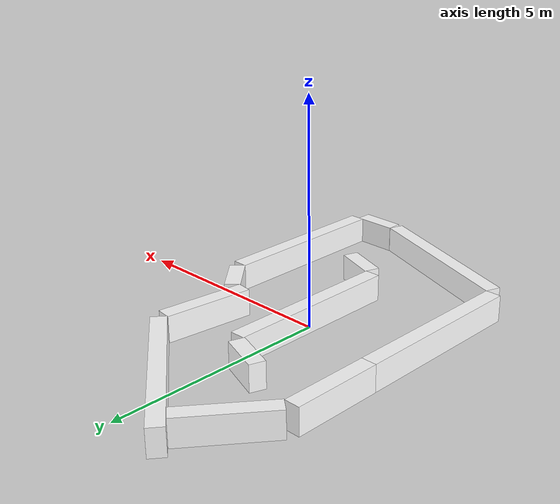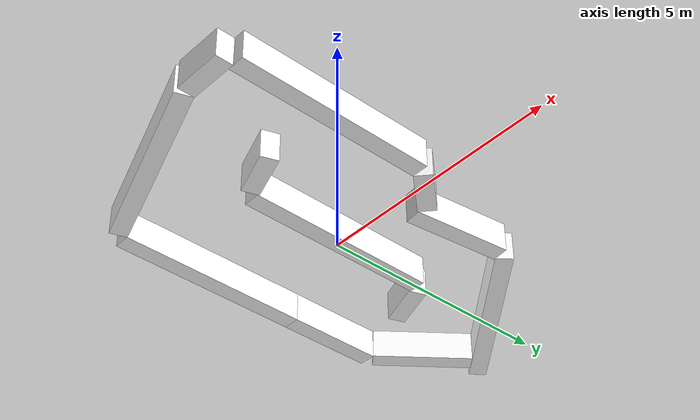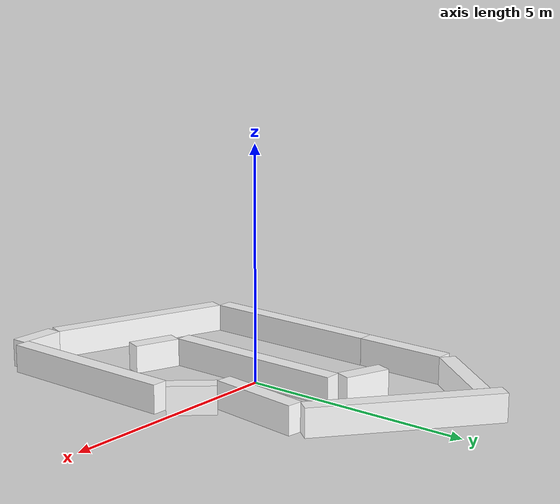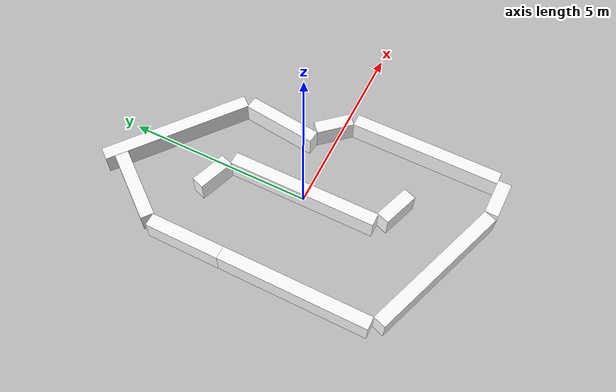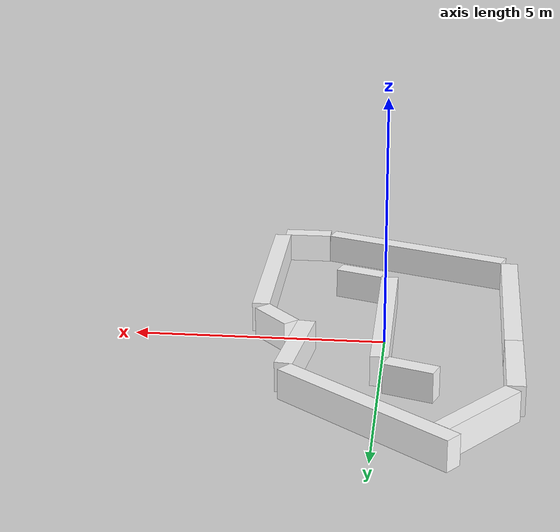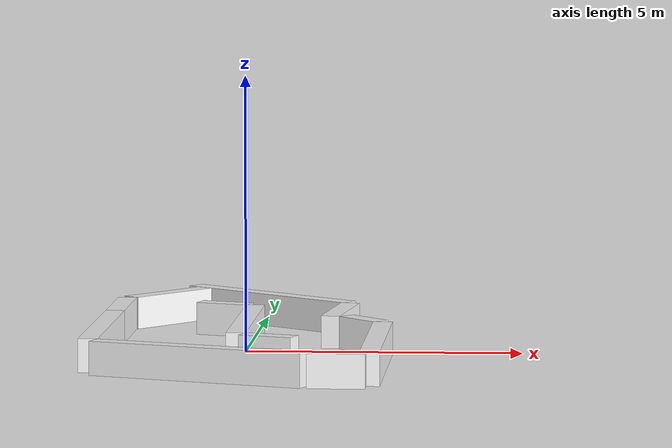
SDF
<?xml version='1.0'?>
<sdf version='1.0'>
  <model name='default_maze'>
        <include>
            <uri>model://large_wall</uri>
            <name>wall_01</name>
            <pose>-2.5 -1 0.3 0 0 1.57</pose>
        </include>

        <include>
            <uri>model://medium_wall</uri>
            <name>wall_02</name>
            <pose>-2.5 2 0.3 0 0 1.57</pose>
        </include>

        <include>
            <uri>model://medium_wall</uri>
            <name>wall_03</name>
            <pose>-1.82 3.88 0.3 0 0 0.9</pose>
        </include>

        <include>
            <uri>model://large_wall</uri>
            <name>wall_04</name>
            <pose>0 0 0.3 0 0 1.57</pose>
        </include>

        <include>
            <uri>model://small_wall</uri>
            <name>wall_05</name>
            <pose>-0.6 2.3 0.3 0 0 2.8</pose>
        </include>

        <include>
            <uri>model://small_wall</uri>
            <name>wall_06</name>
            <pose>0.6 -2.3 0.3 0 0 2.8</pose>
        </include>

        <include>
            <uri>model://large_wall</uri>
            <name>wall_07</name>
            <pose>-0.5 -3.83 0.3 0 0 2.8</pose>
        </include>

        <include>
            <uri>model://large_wall</uri>
            <name>wall_08</name>
            <pose>2.5 -2.325 0.3 0 0 1.57</pose>
        </include>

        <include>
            <uri>model://large_wall</uri>
            <name>wall_09</name>
            <pose>0.15 3.82 0.3 0 0 2.47</pose>
        </include>

        <include>
            <uri>model://small_wall</uri>
            <name>wall_10</name>
            <pose>2.125 0.16 0.3 0 0 2.3</pose>
        </include>

        <include>
            <uri>model://medium_wall</uri>
            <name>wall_11</name>
            <pose>1.625 1.44 0.3 0 0 1.45</pose>
        </include>

        <include>
            <uri>model://small_wall</uri>
            <name>wall_12</name>
            <pose>1.94 -4.5 0.3 0 0 0</pose>
        </include>
    <static>1</static>
    <allow_auto_disable>1</allow_auto_disable>
  </model>
</sdf>

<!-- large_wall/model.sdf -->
<sdf version='1.0'>
  <model name='large_wall'>
    <link name='large_wall_10'>
      <pose frame=''>0 0 0 0 -0 0</pose>
      <self_collide>0</self_collide>
      <enable_wind>0</enable_wind>
      <kinematic>0</kinematic>
      <gravity>1</gravity>
      <inertial>
        <mass>1</mass>
        <pose frame=''>0 0 0 0 -0 0</pose>
        <inertia>
          <ixx>1</ixx>
          <ixy>0</ixy>
          <ixz>0</ixz>
          <iyy>1</iyy>
          <iyz>0</iyz>
          <izz>1</izz>
        </inertia>
      </inertial>
      <visual name='large_wall_10_Visual_0'>
        <pose frame=''>0 0 0 0 -0 0</pose>
        <geometry>
          <box>
            <size>4 0.35 0.6</size>
          </box>
        </geometry>
        <material>
          <script>
            <uri>model://large_wall/materials/scripts</uri>
            <uri>model://large_wall/materials/textures</uri>
            <name>large_wall</name>
          </script>
          <shader type='pixel'>
            <normal_map>__default__</normal_map>
          </shader>
          <ambient>1 1 1 1</ambient>
          <diffuse>1 1 1 1</diffuse>
          <specular>0 0 0 1</specular>
          <emissive>0 0 0 1</emissive>
        </material>
        <meta>
          <layer>0</layer>
        </meta>
        <transparency>0</transparency>
        <cast_shadows>1</cast_shadows>
      </visual>
      <collision name='large_wall_10_Collision_0'>
        <laser_retro>0</laser_retro>
        <max_contacts>10</max_contacts>
        <pose frame=''>0 0 0 0 -0 0</pose>
        <geometry>
          <box>
            <size>4 0.35 0.6</size>
          </box>
        </geometry>
        <surface>
          <friction>
            <ode>
              <mu>1</mu>
              <mu2>1</mu2>
              <fdir1>0 0 0</fdir1>
              <slip1>0</slip1>
              <slip2>0</slip2>
            </ode>
            <torsional>
              <coefficient>1</coefficient>
              <patch_radius>0</patch_radius>
              <surface_radius>0</surface_radius>
              <use_patch_radius>1</use_patch_radius>
              <ode>
                <slip>0</slip>
              </ode>
            </torsional>
          </friction>
          <bounce>
            <restitution_coefficient>0</restitution_coefficient>
            <threshold>1e+06</threshold>
          </bounce>
          <contact>
            <collide_without_contact>0</collide_without_contact>
            <collide_without_contact_bitmask>1</collide_without_contact_bitmask>
            <collide_bitmask>1</collide_bitmask>
            <ode>
              <soft_cfm>0</soft_cfm>
              <soft_erp>0.2</soft_erp>
              <kp>1e+13</kp>
              <kd>1</kd>
              <max_vel>0.01</max_vel>
              <min_depth>0</min_depth>
            </ode>
            <bullet>
              <split_impulse>1</split_impulse>
              <split_impulse_penetration_threshold>-0.01</split_impulse_penetration_threshold>
              <soft_cfm>0</soft_cfm>
              <soft_erp>0.2</soft_erp>
              <kp>1e+13</kp>
              <kd>1</kd>
            </bullet>
          </contact>
        </surface>
      </collision>
    </link>
    <static>1</static>
    <allow_auto_disable>1</allow_auto_disable>
  </model>
</sdf>

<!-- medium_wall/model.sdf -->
<sdf version='1.0'>
  <model name='medium_wall'>
    <link name='medium_wall_10'>
      <pose frame=''>0 0 0 0 -0 0</pose>
      <self_collide>0</self_collide>
      <enable_wind>0</enable_wind>
      <kinematic>0</kinematic>
      <gravity>1</gravity>
      <inertial>
        <mass>1</mass>
        <pose frame=''>0 0 0 0 -0 0</pose>
        <inertia>
          <ixx>1</ixx>
          <ixy>0</ixy>
          <ixz>0</ixz>
          <iyy>1</iyy>
          <iyz>0</iyz>
          <izz>1</izz>
        </inertia>
      </inertial>
      <visual name='medium_wall_10_Visual_0'>
        <pose frame=''>0 0 0 0 -0 0</pose>
        <geometry>
          <box>
            <size>2 0.35 0.6</size>
          </box>
        </geometry>
        <material>
          <script>
            <uri>model://medium_wall/materials/scripts</uri>
            <uri>model://medium_wall/materials/textures</uri>
            <name>medium_wall</name>
          </script>
          <shader type='pixel'>
            <normal_map>__default__</normal_map>
          </shader>
          <ambient>1 1 1 1</ambient>
          <diffuse>1 1 1 1</diffuse>
          <specular>0 0 0 1</specular>
          <emissive>0 0 0 1</emissive>
        </material>
        <meta>
          <layer>0</layer>
        </meta>
        <transparency>0</transparency>
        <cast_shadows>1</cast_shadows>
      </visual>
      <collision name='medium_wall_10_Collision_0'>
        <laser_retro>0</laser_retro>
        <max_contacts>10</max_contacts>
        <pose frame=''>0 0 0 0 -0 0</pose>
        <geometry>
          <box>
            <size>2 0.35 0.6</size>
          </box>
        </geometry>
        <surface>
          <friction>
            <ode>
              <mu>1</mu>
              <mu2>1</mu2>
              <fdir1>0 0 0</fdir1>
              <slip1>0</slip1>
              <slip2>0</slip2>
            </ode>
            <torsional>
              <coefficient>1</coefficient>
              <patch_radius>0</patch_radius>
              <surface_radius>0</surface_radius>
              <use_patch_radius>1</use_patch_radius>
              <ode>
                <slip>0</slip>
              </ode>
            </torsional>
          </friction>
          <bounce>
            <restitution_coefficient>0</restitution_coefficient>
            <threshold>1e+06</threshold>
          </bounce>
          <contact>
            <collide_without_contact>0</collide_without_contact>
            <collide_without_contact_bitmask>1</collide_without_contact_bitmask>
            <collide_bitmask>1</collide_bitmask>
            <ode>
              <soft_cfm>0</soft_cfm>
              <soft_erp>0.2</soft_erp>
              <kp>1e+13</kp>
              <kd>1</kd>
              <max_vel>0.01</max_vel>
              <min_depth>0</min_depth>
            </ode>
            <bullet>
              <split_impulse>1</split_impulse>
              <split_impulse_penetration_threshold>-0.01</split_impulse_penetration_threshold>
              <soft_cfm>0</soft_cfm>
              <soft_erp>0.2</soft_erp>
              <kp>1e+13</kp>
              <kd>1</kd>
            </bullet>
          </contact>
        </surface>
      </collision>
    </link>
    <static>1</static>
    <allow_auto_disable>1</allow_auto_disable>
  </model>
</sdf>

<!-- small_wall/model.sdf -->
<sdf version='1.0'>
  <model name='small_wall'>
    <link name='small_wall_10'>
      <pose frame=''>0 0 0 0 -0 0</pose>
      <self_collide>0</self_collide>
      <enable_wind>0</enable_wind>
      <kinematic>0</kinematic>
      <gravity>1</gravity>
      <inertial>
        <mass>1</mass>
        <pose frame=''>0 0 0 0 -0 0</pose>
        <inertia>
          <ixx>1</ixx>
          <ixy>0</ixy>
          <ixz>0</ixz>
          <iyy>1</iyy>
          <iyz>0</iyz>
          <izz>1</izz>
        </inertia>
      </inertial>
      <visual name='small_wall_10_Visual_0'>
        <pose frame=''>0 0 0 0 -0 0</pose>
        <geometry>
          <box>
            <size>1 0.35 0.6</size>
          </box>
        </geometry>
        <material>
          <script>
            <uri>model://small_wall/materials/scripts</uri>
            <uri>model://small_wall/materials/textures</uri>
            <name>small_wall</name>
          </script>
          <shader type='pixel'>
            <normal_map>__default__</normal_map>
          </shader>
          <ambient>1 1 1 1</ambient>
          <diffuse>1 1 1 1</diffuse>
          <specular>0 0 0 1</specular>
          <emissive>0 0 0 1</emissive>
        </material>
        <meta>
          <layer>0</layer>
        </meta>
        <transparency>0</transparency>
        <cast_shadows>1</cast_shadows>
      </visual>
      <collision name='small_wall_10_Collision_0'>
        <laser_retro>0</laser_retro>
        <max_contacts>10</max_contacts>
        <pose frame=''>0 0 0 0 -0 0</pose>
        <geometry>
          <box>
            <size>1 0.35 0.6</size>
          </box>
        </geometry>
        <surface>
          <friction>
            <ode>
              <mu>1</mu>
              <mu2>1</mu2>
              <fdir1>0 0 0</fdir1>
              <slip1>0</slip1>
              <slip2>0</slip2>
            </ode>
            <torsional>
              <coefficient>1</coefficient>
              <patch_radius>0</patch_radius>
              <surface_radius>0</surface_radius>
              <use_patch_radius>1</use_patch_radius>
              <ode>
                <slip>0</slip>
              </ode>
            </torsional>
          </friction>
          <bounce>
            <restitution_coefficient>0</restitution_coefficient>
            <threshold>1e+06</threshold>
          </bounce>
          <contact>
            <collide_without_contact>0</collide_without_contact>
            <collide_without_contact_bitmask>1</collide_without_contact_bitmask>
            <collide_bitmask>1</collide_bitmask>
            <ode>
              <soft_cfm>0</soft_cfm>
              <soft_erp>0.2</soft_erp>
              <kp>1e+13</kp>
              <kd>1</kd>
              <max_vel>0.01</max_vel>
              <min_depth>0</min_depth>
            </ode>
            <bullet>
              <split_impulse>1</split_impulse>
              <split_impulse_penetration_threshold>-0.01</split_impulse_penetration_threshold>
              <soft_cfm>0</soft_cfm>
              <soft_erp>0.2</soft_erp>
              <kp>1e+13</kp>
              <kd>1</kd>
            </bullet>
          </contact>
        </surface>
      </collision>
    </link>
    <static>1</static>
    <allow_auto_disable>1</allow_auto_disable>
  </model>
</sdf>
